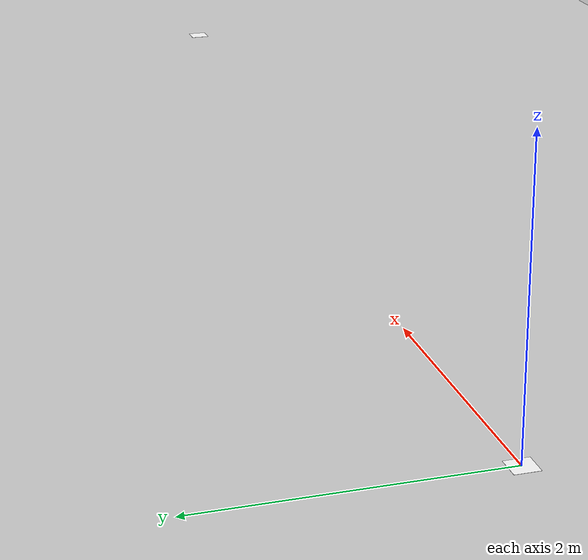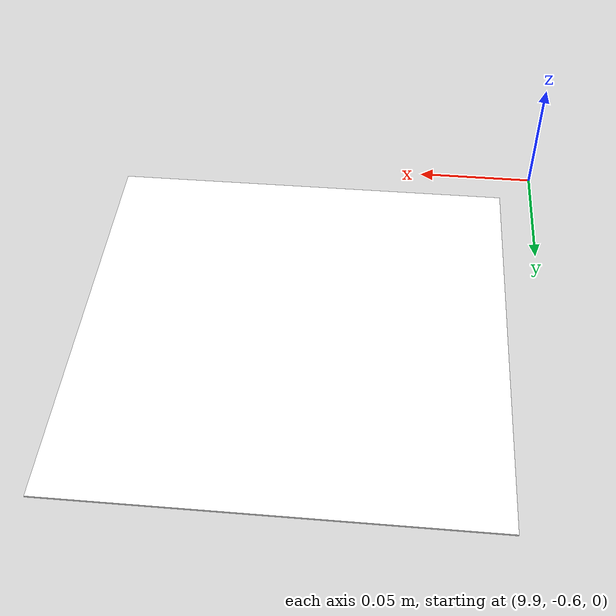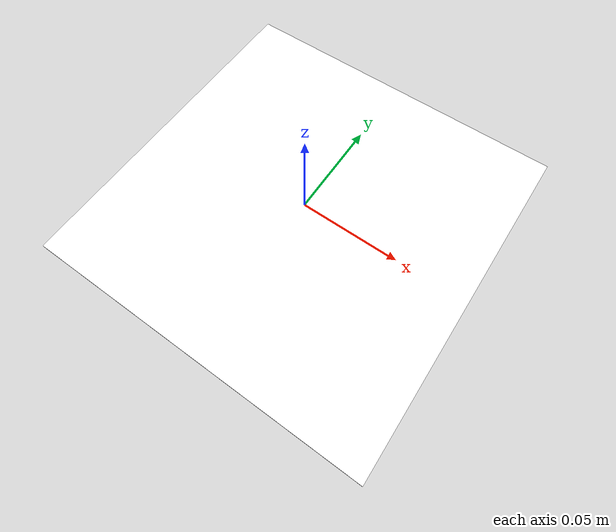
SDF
<?xml version="1.0" encoding="UTF-8"?>
<sdf version="1.9">
  <world name="aruco">
    <physics type="ode">
      <max_step_size>0.004</max_step_size>
      <real_time_factor>1.0</real_time_factor>
      <real_time_update_rate>250</real_time_update_rate>
    </physics>
    <gravity>0 0 -9.8</gravity>
    <magnetic_field>6e-06 2.3e-05 -4.2e-05</magnetic_field>
    <atmosphere type="adiabatic"/>
    <scene>
      <grid>false</grid>
      <ambient>0.4 0.4 0.4 1</ambient>
      <background>0.7 0.7 0.7 1</background>
      <shadows>true</shadows>
    </scene>

    <model name="ground_plane">
      <static>true</static>
      <link name="link">
        <collision name="collision">
          <geometry>
            <plane>
              <normal>0 0 1</normal>
              <size>1 1</size>
            </plane>
          </geometry>
          <surface>
            <friction><ode/></friction>
            <bounce/>
            <contact/>
          </surface>
        </collision>
        <visual name="visual">
          <geometry>
            <plane>
              <normal>0 0 1</normal>
              <size>100 100</size>
            </plane>
          </geometry>
          <material>
            <ambient>0.8 0.8 0.8 0.5</ambient>
            <diffuse>0.8 0.8 0.8 0.5</diffuse>
            <specular>0.8 0.8 0.8 0.5</specular>
          </material>
        </visual>
      </link>
    </model>

    <light name="sunUTC" type="directional">
      <pose>0 0 500 0 -0 0</pose>
      <cast_shadows>true</cast_shadows>
      <intensity>1</intensity>
      <direction>0.001 0.625 -0.78</direction>
      <diffuse>0.904 0.904 0.904 1</diffuse>
      <specular>0.271 0.271 0.271 1</specular>
      <attenuation>
        <range>2000</range>
        <linear>0</linear>
        <constant>1</constant>
        <quadratic>0</quadratic>
      </attenuation>
    </light>

    <spherical_coordinates>
      <surface_model>EARTH_WGS84</surface_model>
      <world_frame_orientation>ENU</world_frame_orientation>
      <latitude_deg>47.397971057728974</latitude_deg>
      <longitude_deg>8.546163739800146</longitude_deg>
      <elevation>0</elevation>
    </spherical_coordinates>

    <!-- First AprilTag -->
    <include>
      <uri>model://Apriltag36_11_00000</uri>
      <pose>0 0 0 0 0 0</pose>
    </include>

    <!-- Second AprilTag placed 10 meters in front along +X -->
    <include>
      <uri>model://Apriltag36_11_00001</uri>
      <pose>10 -0.5 0 0 0 0</pose>
    </include>

  </world>
</sdf>

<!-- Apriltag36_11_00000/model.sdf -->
<sdf version='1.9'>
  <model name='Apriltag36_11_00000'>
    <link name='main'>
      <pose>0 0 0 0 0 0</pose>
      <visual name='main_Visual'>
        <geometry>
          <box>
            <size>0.172 0.172 0.001</size>
          </box>
        </geometry>
        <material>
          <ambient>1 1 1 1</ambient>
          <diffuse>1 1 1 1</diffuse>
          <specular>0 0 0 1</specular>
          <pbr>
            <metal>
              <albedo_map>model://Apriltag36_11_00000/materials/textures/tag36_11_00000.png</albedo_map>
            </metal>
          </pbr>
        </material>
      </visual>
      <collision name='main_Collision'>
        <geometry>
          <box>
            <size>0.172 0.172 0.001</size>
          </box>
        </geometry>
      </collision>
    </link>
    <static>true</static>
  </model>
</sdf>

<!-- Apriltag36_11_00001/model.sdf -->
<sdf version='1.9'>
  <model name='Apriltag36_11_00001'>
    <link name='main'>
      <pose>0 0 0 0 0 0</pose>
      <visual name='main_Visual'>
        <geometry>
          <box>
            <size>0.172 0.172 0.001</size>
          </box>
        </geometry>
        <material>
          <ambient>1 1 1 1</ambient>
          <diffuse>1 1 1 1</diffuse>
          <specular>0 0 0 1</specular>
          <pbr>
            <metal>
              <albedo_map>model://Apriltag36_11_00001/materials/textures/tag36_11_00001.png</albedo_map>
            </metal>
          </pbr>
        </material>
      </visual>
      <collision name='main_Collision'>
        <geometry>
          <box>
            <size>0.172 0.172 0.001</size>
          </box>
        </geometry>
      </collision>
    </link>
    <static>true</static>
  </model>
</sdf>
